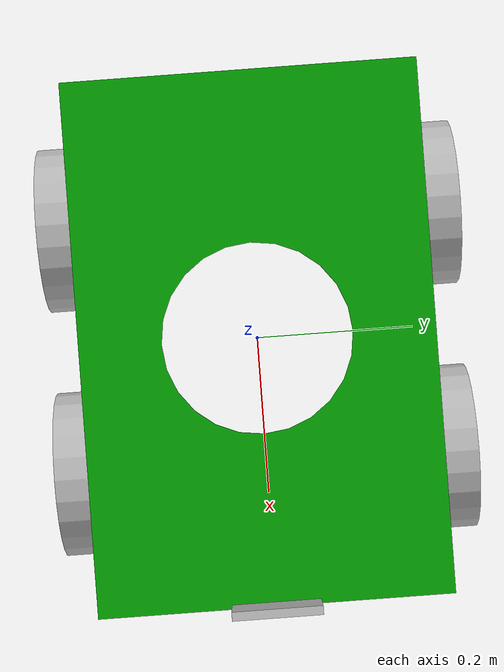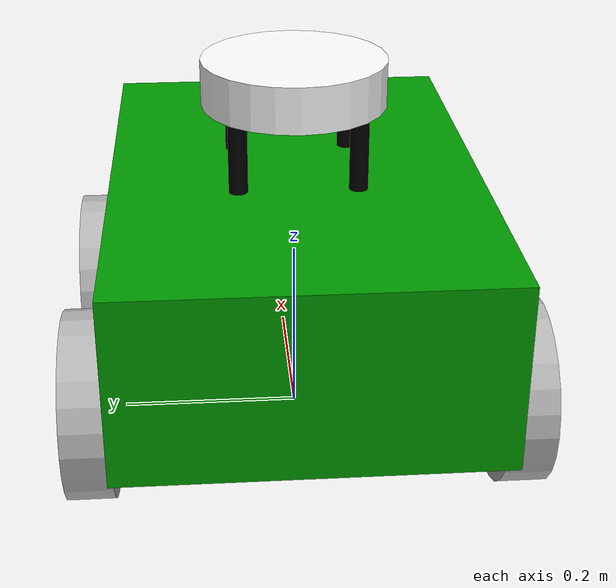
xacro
<?xml version="1.0"?>
<robot name="my_robot" xmlns:xacro="http://www.ros.org/wiki/xacro">

    <xacro:include filename="/home/dllab/ros2_ws/src/openpcdet_ros2/urdf/common_properties.xacro" />
    <xacro:include filename="/home/dllab/ros2_ws/src/openpcdet_ros2/urdf/mobile_base.xacro" />
    <xacro:include filename="/home/dllab/ros2_ws/src/openpcdet_ros2/urdf/mobile_base_gazebo.xacro" />
    <xacro:include filename="/home/dllab/ros2_ws/src/openpcdet_ros2/urdf/camera.xacro" />
    <xacro:include filename="/home/dllab/ros2_ws/src/openpcdet_ros2/urdf/lidar.xacro" />
    <xacro:include filename="/home/dllab/ros2_ws/src/openpcdet_ros2/urdf/depth_camera.xacro" />

</robot>

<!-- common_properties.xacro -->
<robot xmlns:xacro="http://www.ros.org/wiki/xacro">

    <material name="gray">
        <color rgba="0.7 0.7 0.7 1" />
    </material>

    <material name="green">
        <color rgba="0 0.6 0 1"/>
    </material>

    <material name="white">
        <color rgba="1 1 1 1"/>
    </material>

    <material name="black">
        <color rgba="0 0 0 1"/>
    </material>

    <material name="sky_blue">
        <color rgba="0.25 0.33 0.96 1"/>
    </material>

    <material name="orange">
        <color rgba="0.92 0.53 0.16 1"/>
    </material>
    <!-- square -->
    <xacro:macro name="box_inertia" params="m l w h xyz rpy">
        <inertial>
            <origin xyz="${xyz}" rpy="${rpy}" />
            <mass value="${m}" />
            <inertia ixx="${(m/12) * (h*h + l*l)}" ixy="0" ixz="0"
                     iyy="${(m/12) * (w*w + l*l)}" iyz="0"
                     izz="${(m/12) * (w*w + h*h)}" />
        </inertial>
    </xacro:macro>
    <!-- wheel lidar -->
    <xacro:macro name="cylinder_inertia" params="m r h xyz rpy">
        <inertial>
            <origin xyz="${xyz}" rpy="${rpy}" />
            <mass value="${m}" />
            <inertia ixx="${(m/12) * (3*r*r + h*h)}" ixy="0" ixz="0"
                     iyy="${(m/12) * (3*r*r + h*h)}" iyz="0"
                     izz="${(m/2) * (r*r)}"/>
        </inertial>
    </xacro:macro>
    <!--stand-->
     <xacro:macro name="solid_cylinder" params="m r h xyz rpy">
        <inertial>
            <origin xyz="${xyz}" rpy="${rpy}" />
            <mass value="${m}" />
            <inertia ixx="${(m/12) * ((3*r*r) + (h*h))}" ixy="0" ixz="0"
                     iyy="${(m/12) * ((3*r* ) + (h*h))}" iyz="0"
                     izz="${(1/2) * m * r * r}"/>
        </inertial>
    </xacro:macro>

</robot>

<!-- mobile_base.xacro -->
<robot xmlns:xacro="http://www.ros.org/wiki/xacro">

    <!-- Define properties -->
    <xacro:property name="base_length" value="0.6" />
    <xacro:property name="base_width" value="0.4" />
    <xacro:property name="base_height" value="0.2" />
    <xacro:property name="wheel_radius" value="0.1" />
    <xacro:property name="wheel_length" value="0.05" />
    <xacro:property name="stand_pillar_radius" value="0.01" />
    <xacro:property name="stand_pillar_length" value="0.23" />

    <!-- Base footprint -->
    <link name="base_footprint" />

    <!-- Base link -->
    <link name="base_link">
        <visual>
            <geometry>
                <box size="${base_length} ${base_width} ${base_height}" />
            </geometry>
            <origin xyz="0 0 ${base_height / 2.0}" rpy="0 0 0" />
            <material name="green" />
        </visual>
        <xacro:cylinder_inertia m="5.0" r="${base_length}" h="${base_height}"
                                xyz="0 0 ${2 * base_height / 2.0}" rpy="0 0 0" />
        <collision>
            <geometry>
                <box size="0.6 0.4 0.2" />
            </geometry>
            <origin xyz="0 0 0.1" rpy="0 0 0" />
        </collision>
    </link>

    <!-- Lidar link -->
    <link name="lidar">
        <visual>
            <geometry>
                <cylinder radius="${wheel_radius}" length="${wheel_length}" />
            </geometry>
            <origin xyz="0 0 0" rpy="0 0 0" />
            <material name="white" />
        </visual>
        <collision>
            <geometry>
                <box size="0.2 0.2 0.05" />
            </geometry>
            <origin xyz="0 0 0" rpy="0 0 0" />
        </collision>
    </link>

    <!-- Wheel link macro -->
    <xacro:macro name="wheel_link" params="prefix">
        <link name="${prefix}_wheel">
            <visual>
                <geometry>
                    <cylinder radius="${wheel_radius}" length="${wheel_length}" />
                </geometry>
                <origin xyz="0 0 0" rpy="${pi / 2.0} 0 0" />
                <material name="gray" />
            </visual>
            <collision>
                <geometry>
                    <cylinder radius="${wheel_radius}" length="${wheel_length}" />
                </geometry>
                <origin xyz="0 0 0" rpy="${pi / 2.0} 0 0" />
            </collision>
            <xacro:cylinder_inertia m="1.0" r="${wheel_radius}" h="${wheel_length}"
                                    xyz="0 0 0" rpy="${pi / 2.0} 0 0" />
        </link>
    </xacro:macro>

    <!-- Wheel link instances -->
    <xacro:wheel_link prefix="right_front" />
    <xacro:wheel_link prefix="left_front" />
    <xacro:wheel_link prefix="right_back" />
    <xacro:wheel_link prefix="left_back" />

    <!-- Stand macro -->
    <xacro:macro name="stand_pillar" params="prefix">
        <link name="${prefix}_stand_pillar">
            <visual>
                <geometry>
                    <cylinder radius="${stand_pillar_radius}" length="${stand_pillar_length}" />
                </geometry>
                <origin xyz="0 0 0" rpy="0 0 0" />
                <material name="black" />
            </visual>
            <collision>
                <geometry>
                    <cylinder radius="${stand_pillar_radius}" length="${stand_pillar_length}" />
                </geometry>
                <origin xyz="0 0 0" rpy="0 0 0" />
            </collision>
            <xacro:cylinder_inertia m="1.0" r="${stand_pillar_radius}" h="${stand_pillar_length}"
                                    xyz="0 0 0" rpy="0 0 0" />
        </link>
    </xacro:macro>

    <!-- Stand pillar instances -->
    <xacro:stand_pillar prefix="right_up" />
    <xacro:stand_pillar prefix="right_down" />
    <xacro:stand_pillar prefix="left_up" />
    <xacro:stand_pillar prefix="left_down" />

    <!-- base_footprint -->
    <joint name="base_joint" type="fixed">
        <parent link="base_footprint" />
        <child link="base_link" />
        <origin xyz="0 0 0.1" rpy="0 0 0" />
    </joint>

    <!-- Base to lidar joint -->
    <joint name="base_lidar_joint" type="fixed">
        <parent link="base_link" />
        <child link="lidar" />
        <origin xyz="0 0 0.3" rpy="0 0 0" />
    </joint>

    <!-- Wheel joints -->
    <joint name="base_left_wheel" type="continuous">
        <parent link="base_link" />
        <child link="left_front_wheel" />
        <origin xyz="-0.15 -0.225 0" rpy="0 0 0" />
        <axis xyz="0 1 0" />
    </joint>

    <joint name="base_right_wheel" type="continuous">
        <parent link="base_link" />
        <child link="right_front_wheel" />
        <origin xyz="-0.15 0.225 0" rpy="0 0 0" />
        <axis xyz="0 1 0" />
    </joint>

    <joint name="base_left_back_wheel" type="continuous">
        <parent link="base_link" />
        <child link="left_back_wheel" />
        <origin xyz="0.15 -0.225 0" rpy="0 0 0" />
        <axis xyz="0 1 0" />
    </joint>

    <joint name="base_right_back_wheel" type="continuous">
        <parent link="base_link" />
        <child link="right_back_wheel" />
        <origin xyz="0.15 0.225 0" rpy="0 0 0" />
        <axis xyz="0 1 0" />
    </joint>

    <!-- Stand pillar joints -->
    <joint name="stand_rightup_lidar" type="fixed">
        <parent link="base_link" />
        <child link="right_up_stand_pillar" />
        <origin xyz="0.0635 0.0635 0.2" rpy="0 0 0" />
    </joint>

    <joint name="stand_rightdown_lidar" type="fixed">
        <parent link="base_link" />
        <child link="right_down_stand_pillar" />
        <origin xyz="0.0635 -0.0635 0.2" rpy="0 0 0" />
    </joint>

    <joint name="stand_leftup_lidar" type="fixed">
        <parent link="base_link" />
        <child link="left_up_stand_pillar" />
        <origin xyz="-0.0635 0.0635 0.2" rpy="0 0 0" />
    </joint>

    <joint name="stand_leftdown_lidar" type="fixed">
        <parent link="base_link" />
        <child link="left_down_stand_pillar" />
        <origin xyz="-0.0635 -0.0635 0.2" rpy="0 0 0" />
    </joint>

</robot>

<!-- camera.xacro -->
<robot xmlns:xacro="http://www.ros.org/wiki/xacro">

    <xacro:property name="camera_length" value="0.01" />
    <xacro:property name="camera_width" value="0.1" />
    <xacro:property name="camera_height" value="0.05" />

    <link name="camera_link">
       <visual>
            <geometry>
                <box size="${camera_length} ${camera_width} ${camera_height}" />
            </geometry>
            <material name="gray" />
        </visual>
        <collision>
            <geometry>
                <box size="${camera_length} ${camera_width} ${camera_height}" />
            </geometry>
        </collision>
        <xacro:box_inertia m="0.1" l="${camera_length}" w="${camera_width}" h="${camera_height}"
                           xyz="0 0 0" rpy="0 0 0" />
    </link>

    <joint name="base_camera_joint" type="fixed">
        <parent link="base_link" />
        <child link="camera_link" />
        <origin xyz="${base_length / 2.0} 0 ${base_height + (camera_height / 2.0)}" rpy="0 0 0"/>
    </joint>

    <link name="camera_link_optical">
    </link>

    <joint name="camera_optical_joint" type="fixed">
    <!-- these values have to be these values otherwise the gazebo camera
        image won't be aligned properly with the frame it is supposedly
        originating from -->
    <origin xyz="0 0 0" rpy="${-pi/2} 0 ${-pi/2}"/>
    <parent link="camera_link"/>
    <child link="camera_link_optical"/>
    </joint>

    <gazebo reference="camera_link">
        <sensor name="camera_sensor" type="camera">
            <pose>0 0 0 0 0 0</pose>
            <visualize>false</visualize>
            <update_rate>10.0</update_rate>
            <plugin name="camera_controller" filename="libgazebo_ros_camera.so">
                <frame_name>camera_optical_joint</frame_name>
            </plugin>
        </sensor>
    </gazebo>

</robot>

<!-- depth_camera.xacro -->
<robot xmlns:xacro="http://www.ros.org/wiki/xacro">
    <xacro:property name="depth_camera_length" value="0.01" />
    <xacro:property name="depth_camera_width" value="0.1" />
    <xacro:property name="depth_camera_height" value="0.05" />

    <link name="depth_camera_link">
       <visual>
            <geometry>
                <box size="${depth_camera_length} ${depth_camera_width} ${depth_camera_height}" />
            </geometry>
            <material name="gray" />
        </visual>
        <collision>
            <geometry>
                <box size="${depth_camera_length} ${depth_camera_width} ${depth_camera_height}" />
            </geometry>
        </collision>
        <xacro:box_inertia m="0.1" l="${depth_camera_length}" w="${depth_camera_width}" h="${depth_camera_height}"
                           xyz="0 0 0" rpy="0 0 0" />
    </link>

    <joint name="depth_camera_joint" type="fixed">
        <parent link="base_link" />
        <child link="depth_camera_link" />
        <origin xyz="${base_length / 2.0} 0 ${base_height / 2.0}" rpy="0 0 0"/>
    </joint>

    <gazebo reference="depth_camera_joint">
        <sensor name="camera_depth" type="depth">
            <pose>0 0 0 -1.57 0 0</pose>
            <visualize>true</visualize>
            <update_rate>10</update_rate>
            <camera>
                <horizontal_fov>1.089</horizontal_fov>
                <image>
                    <width>640</width>
                    <height>480</height>
                    <format>R8G8B8</format>
                </image>
                <clip>
                    <near>0.05</near>
                    <far>8</far>
                </clip>
            </camera>
            <plugin name="kinect_camera_controller" filename="libgazebo_ros_camera.so">
                <frameName>depth_camera_link</frameName>
            </plugin>
        </sensor>
    </gazebo>

</robot>
